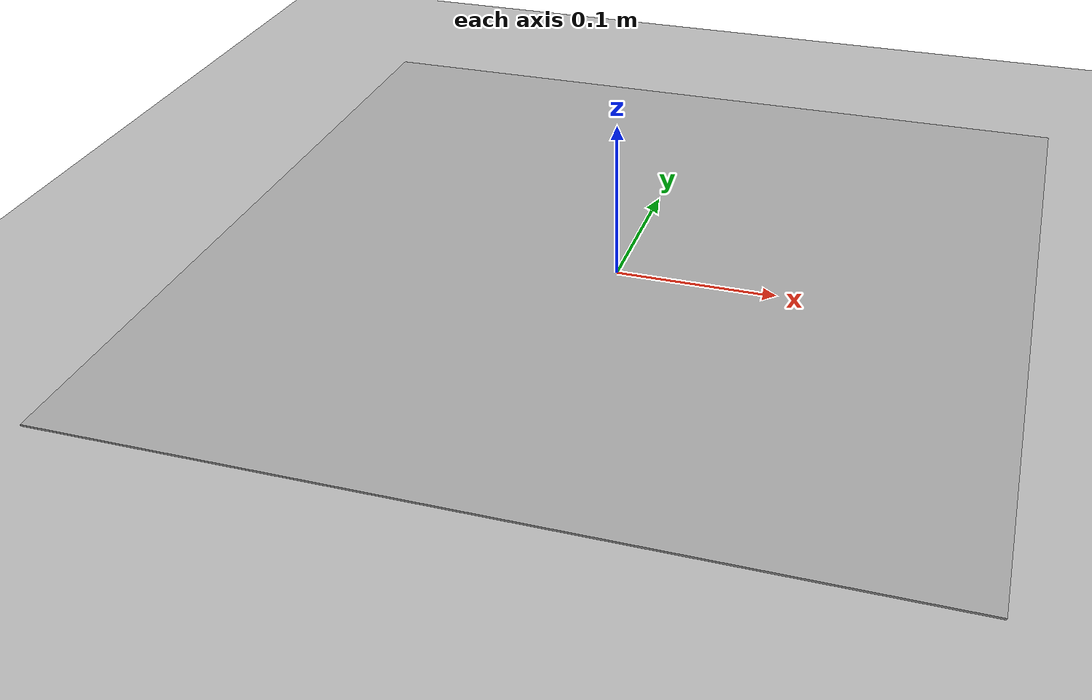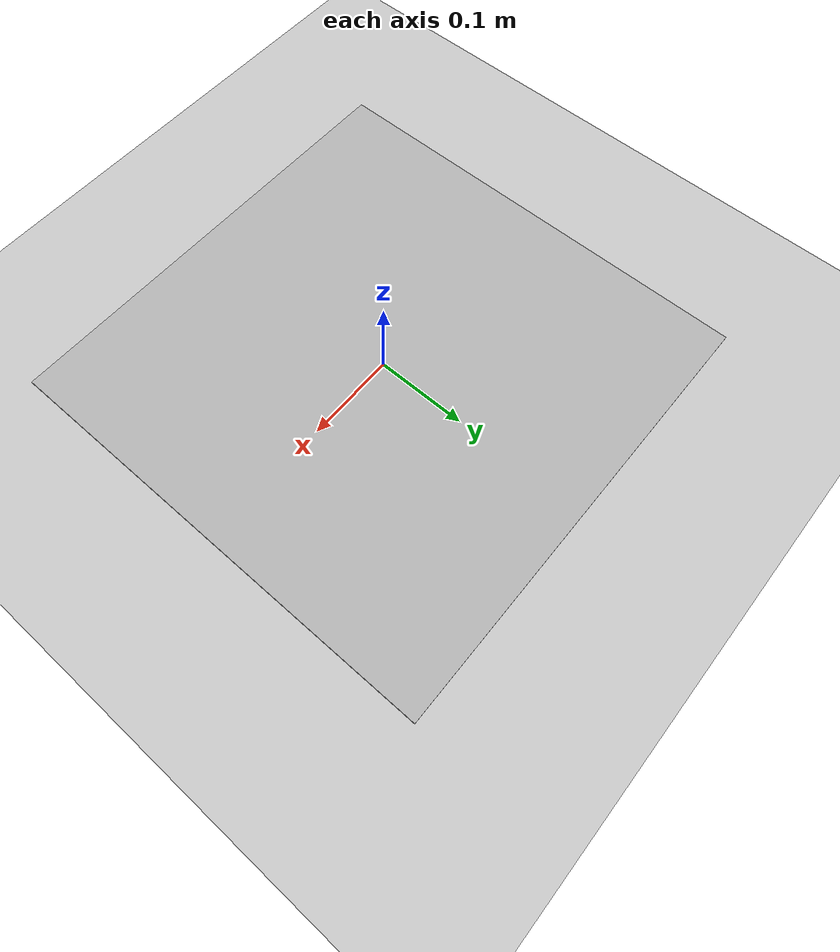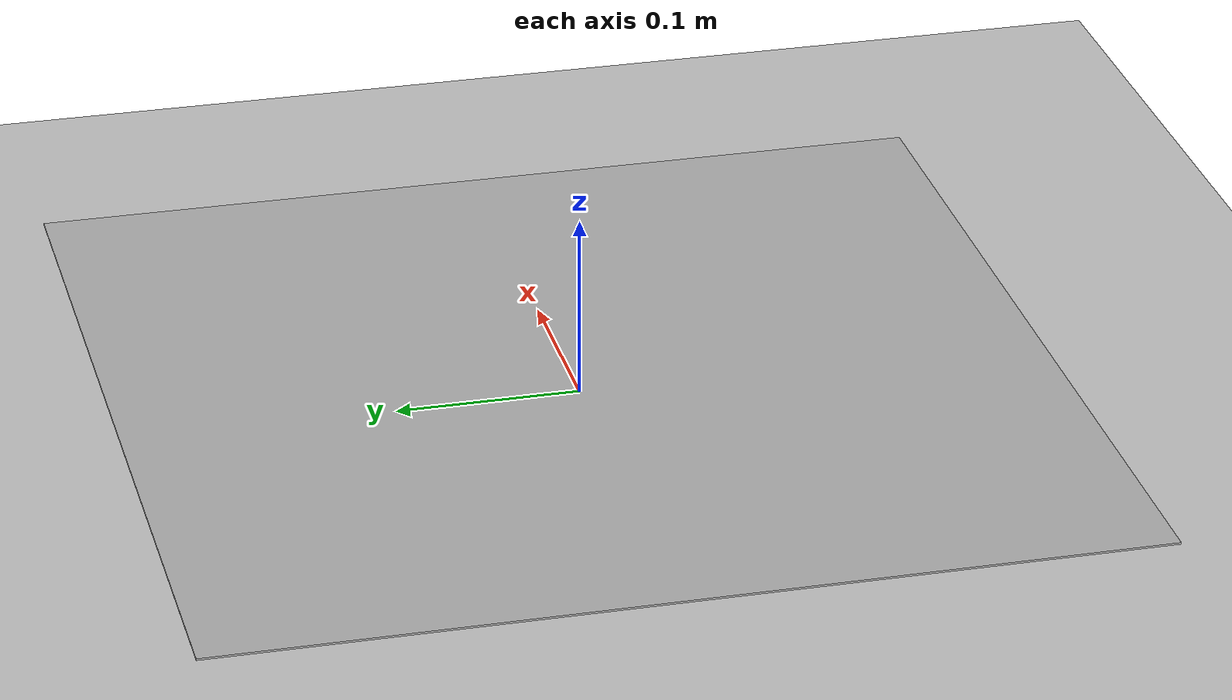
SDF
<?xml version="1.0" ?>
<sdf version="1.6">
  <world name="apriltag_world">

    <!-- Ground plane -->
    <include>
      <uri>model://ground_plane</uri>
    </include>
    <include>
	<uri>model://sun</uri>
    <physics name='default_physics' default='0' type='ode'>
      <gravity>0 0 -9.8066</gravity>
      <ode>
        <solver>
          <type>quick</type>
          <iters>10</iters>
          <sor>1.3</sor>
          <use_dynamic_moi_rescaling>0</use_dynamic_moi_rescaling>
        </solver>
        <constraints>
          <cfm>0</cfm>
          <erp>0.2</erp>
          <contact_max_correcting_vel>100</contact_max_correcting_vel>
          <contact_surface_layer>0.001</contact_surface_layer>
        </constraints>
      </ode>
      <max_step_size>0.004</max_step_size>
      <real_time_factor>1</real_time_factor>
      <real_time_update_rate>250</real_time_update_rate>
      <magnetic_field>6.0e-6 2.3e-5 -4.2e-5</magnetic_field>
    </physics>
    </include>

    <!-- AprilTag as a flat box with texture -->
    <model name="Apriltag_36_11_00000">
      <static>true</static>
      <pose>0 0 0.01 0 0 0</pose>
      <link name="link">
        <visual name="visual">
            <geometry>
            <box><size>0.5 0.5 0.001</size></box>
          </geometry>
          <material>
    <script>
      <uri>model://Apriltag36_11_00000/materials/scripts</uri>
      <uri>model://Apriltag36_11_00000/materials/textures</uri>
      <name>Apriltag36_11_00000</name>
    </script>
    </material>
          </visual>
      </link>
    </model>

    <scene>
    <shadows>false</shadows>
    <grid>true</grid>
    <origin_visual>true</origin_visual>
    <ambient>0.4 0.4 0.4 1</ambient>
    <background>0.7 0.7 0.7 1</background>
  </scene>
  </world>
</sdf>
